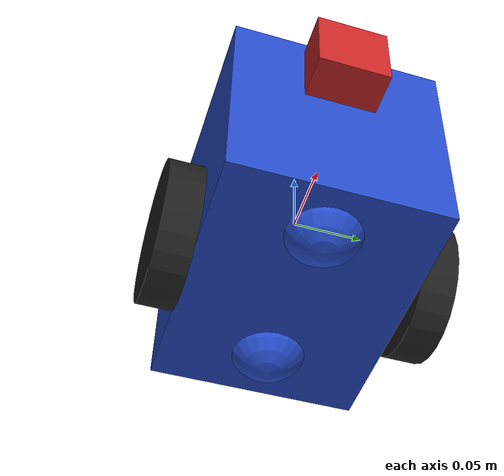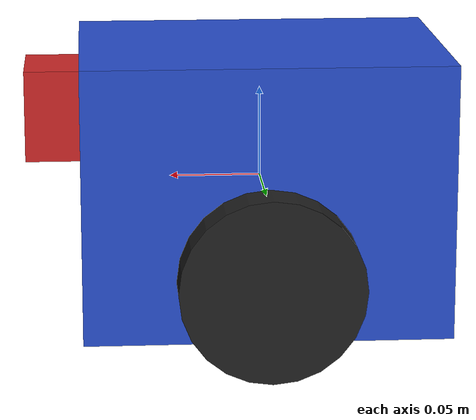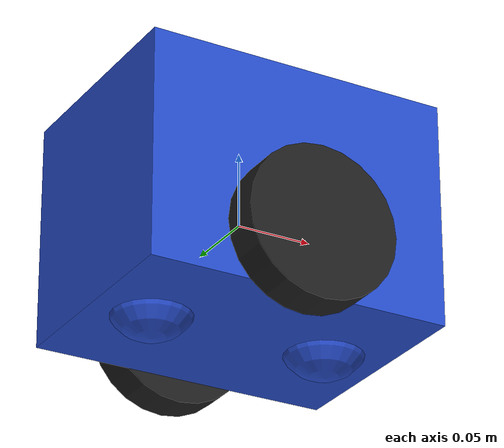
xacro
<?xml version='1.0'?>
<!-- x-green y-red z-blue - for all values -->
<robot name="amp_robot" xmlns:xacro="http://www.ros.org/wiki/xacro">

	<xacro:include filename="$(find amp_robot)/urdf/amp_robot.gazebo" />

	<link name="robot_footprint"></link>

	<joint name="robot_footprint_joint" type="fixed">
		<origin xyz="0 0 0" rpy="0 0 0" />
    <parent link="robot_footprint" />
    <child link="chassis" />
	</joint>

  <link name="chassis">
		<pose>0 0 0.1 0 0 0</pose>

		<inertial>
			<mass value="15.0" />
			<origin xyz="0.0 0 0" rpy="0 0 0"/>
			<inertia
				ixx="0.1" ixy="0" ixz="0"
				iyy="0.1"	iyz="0"
				izz="0.1"
			/>
		</inertial>

		<collision name="collision">
			<origin xyz="0.0 0 0" rpy="0 0 0"/>
			<geometry>
				<box size=".2 .15 .15"/>
			</geometry>
		</collision>

		<visual name="chassis_visual">
			<origin xyz="0.0 0 0" rpy="0 0 0"/>
			<geometry>
				<box size=".2 .15 .15"/>
			</geometry>
		</visual>

		<collision name="back_caster_collision">
			<origin xyz="-0.06 0 -0.06" rpy="0 0 0"/>
			<geometry>
				<sphere radius="0.0299"/>
			</geometry>
		</collision>

		<visual name="back_caster_visual">
			<origin xyz="-0.06 0 -0.06" rpy="0 0 0"/>
			<geometry>
				<sphere radius="0.03"/>
			</geometry>
		</visual>

		<collision name="front_caster_collision">
			<origin xyz="0.06 0 -0.06" rpy="0 0 0"/>
			<geometry>
				<sphere radius="0.0299"/>
			</geometry>
		</collision>

		<visual name="front_caster_visual">
			<origin xyz="0.06 0 -0.06" rpy="0 0 0"/>
			<geometry>
				<sphere radius="0.03"/>
			</geometry>
		</visual>

	</link>

	<link name="left_wheel">

		<inertial>
			<mass value="5.0" />
			<origin xyz="0 0 0" rpy="0 1.5707 1.5707"/>
			<inertia
				ixx="0.1" ixy="0" ixz="0"
				iyy="0.1" iyz="0"
				izz="0.1"
			/>
		</inertial>

		<collision name="left_wheel_collision">
			<origin xyz="0 0 0" rpy="0 1.5707 1.5707"/>
			<geometry>
				<cylinder radius="0.0499" length="0.02499"/>
			</geometry>
		</collision>

		<visual name="left_wheel_visual">
			<origin xyz="0 0 0" rpy="0 1.5707 1.5707"/>
			<geometry>
				<cylinder radius="0.05" length="0.025"/>
			</geometry>
		</visual>

	</link>

	<link name="right_wheel">

		<inertial>
			<mass value="5.0" />
			<origin xyz="0 0 0" rpy="0 1.5707 1.5707"/>
			<inertia
				ixx="0.1" ixy="0" ixz="0"
				iyy="0.1" iyz="0"
				izz="0.1"
			/>
		</inertial>

		<collision name="right_wheel_collision">
			<origin xyz="0 0 0" rpy="0 1.5707 1.5707"/>
			<geometry>
				<cylinder radius="0.0499" length="0.02499"/>
			</geometry>
		</collision>

		<visual name="right_wheel_visual">
			<origin xyz="0 0 0" rpy="0 1.5707 1.5707"/>
			<geometry>
				<cylinder radius="0.05" length="0.025"/>
			</geometry>
		</visual>

	</link>

	<joint name="left_wheel_hinge" type="continuous">
		<origin xyz="0 0.088 -0.04" rpy="0 0 0"/>
		<child link="left_wheel"/>
		<parent link="chassis"/>
		<axis xyz="0 1 0" rpy="0 0 0"/>
		<limit effort="10000" velocity="1000"/>
		<dynamics damping="1.0" friction="1.0"/>
	</joint>

	<joint name="right_wheel_hinge" type="continuous">
		<origin xyz="0 -0.088 -0.04" rpy="0 0 0"/>
		<child link="right_wheel"/>
		<parent link="chassis"/>
		<axis xyz="0 1 0" rpy="0 0 0"/>
		<limit effort="10000" velocity="1000"/>
		<dynamics damping="1.0" friction="1.0"/>
	</joint>

	<joint name="bumper_joint" type="fixed">
		<origin xyz="0.08 0 0.04" rpy="0 0 0"/>
    <axis xyz="0 1 0" />
    <child link="bump_sensor"/>
    <parent link="chassis"/>
	</joint>

	<link name="bump_sensor">
    <collision name = "bump_sensor_collision">
      <origin xyz="0 0 0" rpy="0 0 0"/>
      <geometry>
    <box size="0.1 0.05 0.05"/>
      </geometry>
    </collision>

    <visual>
      <origin xyz="0 0 0" rpy="0 0 0"/>
      <geometry>
         <box size="0.1 0.05 0.05"/>
      </geometry>
    </visual>

    <inertial>
      <mass value="1e-5" />
      <origin xyz="0 0 0" rpy="0 0 0"/>
      <inertia ixx="1e-6" ixy="0" ixz="0" iyy="1e-6" iyz="0" izz="1e-6" />
    </inertial>
  </link>

	<gazebo reference="chassis">
    <material>Gazebo/Blue</material>
  </gazebo>

  <gazebo reference="left_wheel">
    <material>Gazebo/Black</material>
  </gazebo>

  <gazebo reference="right_wheel">
    <material>Gazebo/Black</material>
  </gazebo>

  <gazebo reference="bump_sensor">
    <material>Gazebo/Red</material>
  </gazebo>

</robot>
